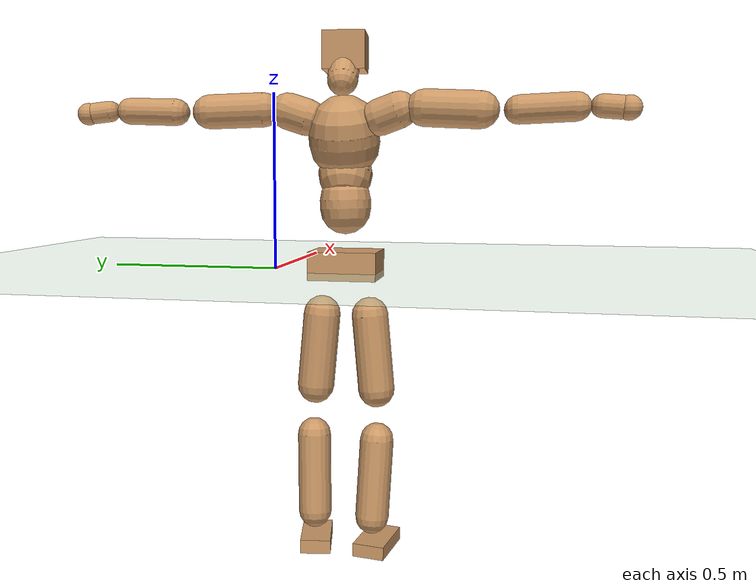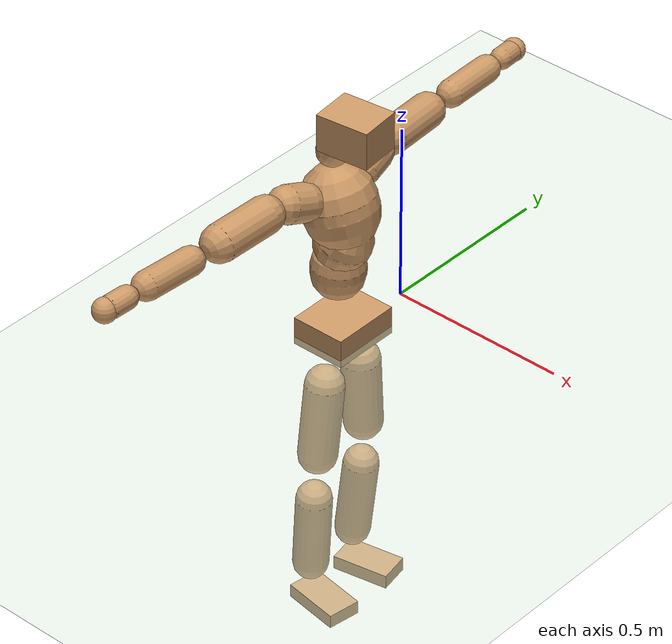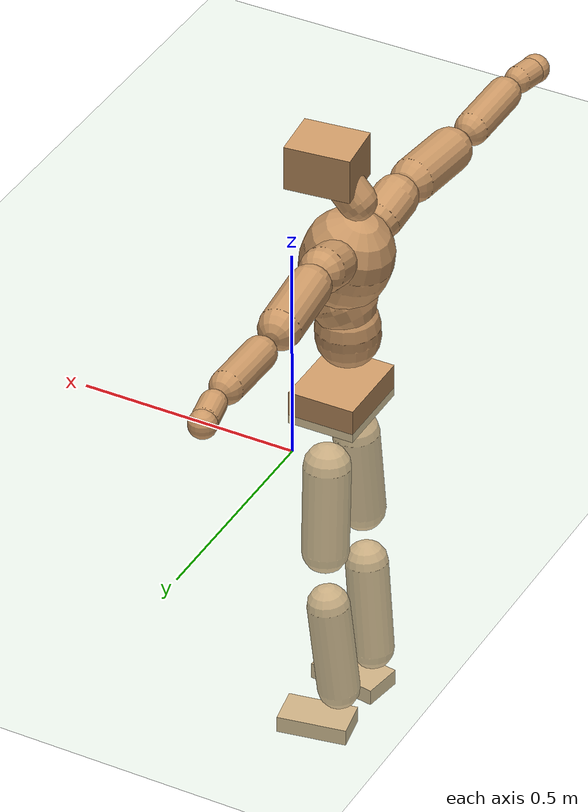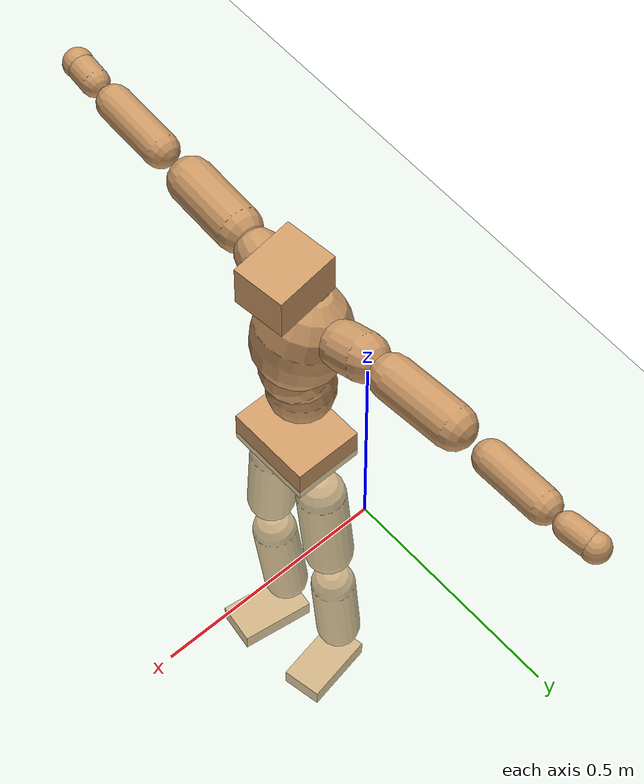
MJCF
<mujoco model="humanoid">
  <compiler coordinate="local" angle="radian"/>
  <default>
    <joint damping="0.0" armature="0.01" stiffness="0.0" limited="true"/>
    <geom conaffinity="1" condim="3" contype="7" margin="0.001" rgba="0.8 0.6 .4 1"/>
  </default>
  <asset>
    <texture type="skybox" builtin="gradient" rgb1=".4 .5 .6" rgb2="0 0 0" width="100" height="100"/>
    <texture builtin="flat" height="1278" mark="cross" markrgb="1 1 1" name="texgeom" random="0.01" rgb1="0.8 0.6 0.4" rgb2="0.8 0.6 0.4" type="cube" width="127"/>
    <texture builtin="checker" height="100" name="texplane" rgb1="0 0 0" rgb2="0.8 0.8 0.8" type="2d" width="100"/>
    <material name="MatPlane" reflectance="0.5" shininess="1" specular="1" texrepeat="60 60" texture="texplane"/>
    <material name="geom" texture="texgeom" texuniform="true"/>
  </asset>
  <worldbody>
    <light cutoff="100" diffuse="1 1 1" dir="-0 0 -1.3" directional="true" exponent="1" pos="0 0 1.3" specular=".1 .1 .1"/>
    <geom conaffinity="1" condim="3" name="floor" pos="0 0 0" rgba="0.8 0.9 0.8 1" size="100 100 .2" type="plane" material="MatPlane"/>
    <body name="Pelvis" pos="-0.0006 -0.2112 0.0291">
      <freejoint name="Pelvis"/>
      <geom type="box" contype="1" conaffinity="1" density="500" pos="-0.0050 -0.0000 -0.0121" size="0.0768 0.0964 0.04" quat="1.0000 0.0000 0.0000 0.0031" name="Pelvis"/>
      <body name="L_Hip" pos="-0.0066 0.0645 -0.0858">
        <joint name="L_Hip_x" type="hinge" pos="0 0 0" axis="1 0 0" stiffness="800" damping="80" armature="0.02" range="-180.0000 180.0000"/>
        <joint name="L_Hip_y" type="hinge" pos="0 0 0" axis="0 1 0" stiffness="800" damping="80" armature="0.02" range="-180.0000 180.0000"/>
        <joint name="L_Hip_z" type="hinge" pos="0 0 0" axis="0 0 1" stiffness="800" damping="80" armature="0.02" range="-180.0000 180.0000"/>
        <geom type="capsule" contype="1" conaffinity="1" density="500" fromto="-0.0018 0.0058 -0.0701 -0.0074 0.0233 -0.2804" size="0.0527" name="L_Hip"/>
        <body name="L_Knee" pos="-0.0092 0.0291 -0.3505">
          <joint name="L_Knee_x" type="hinge" pos="0 0 0" axis="1 0 0" stiffness="800" damping="80" armature="0.02" range="-180.0000 180.0000"/>
          <joint name="L_Knee_y" type="hinge" pos="0 0 0" axis="0 1 0" stiffness="800" damping="80" armature="0.02" range="-180.0000 180.0000"/>
          <joint name="L_Knee_z" type="hinge" pos="0 0 0" axis="0 0 1" stiffness="800" damping="80" armature="0.02" range="-180.0000 180.0000"/>
          <geom type="capsule" contype="1" conaffinity="1" density="500" fromto="-0.0076 -0.0025 -0.0752 -0.0302 -0.0099 -0.3008" size="0.0476" name="L_Knee"/>
          <body name="L_Ankle" pos="-0.0378 -0.0124 -0.376">
            <joint name="L_Ankle_x" type="hinge" pos="0 0 0" axis="1 0 0" stiffness="800" damping="80" armature="0.02" range="-180.0000 180.0000"/>
            <joint name="L_Ankle_y" type="hinge" pos="0 0 0" axis="0 1 0" stiffness="800" damping="80" armature="0.02" range="-180.0000 180.0000"/>
            <joint name="L_Ankle_z" type="hinge" pos="0 0 0" axis="0 0 1" stiffness="800" damping="80" armature="0.02" range="-180.0000 180.0000"/>
            <geom type="box" contype="1" conaffinity="1" density="500" pos="0.0564 0.0103 -0.0273" size="0.0795 0.044 0.02" quat="0.9959 0.0000 0.0000 0.0903" name="L_Ankle"/>
            <body name="L_Toe" pos="0.1128 0.0206 -0.0547">
              <joint name="L_Toe_x" type="hinge" pos="0 0 0" axis="1 0 0" stiffness="500" damping="50" armature="0.02" range="-180.0000 180.0000"/>
              <joint name="L_Toe_y" type="hinge" pos="0 0 0" axis="0 1 0" stiffness="500" damping="50" armature="0.02" range="-180.0000 180.0000"/>
              <joint name="L_Toe_z" type="hinge" pos="0 0 0" axis="0 0 1" stiffness="500" damping="50" armature="0.02" range="-180.0000 180.0000"/>
              <geom type="box" contype="1" conaffinity="1" density="500" pos="0.0000 0.0000 0.0272" size="0.0009 0.0022 0.001" quat="0.9953 0.0000 0.0000 0.0971" name="L_Toe"/>
            </body>
          </body>
        </body>
      </body>
      <body name="R_Hip" pos="-0.0027 -0.0623 -0.0858">
        <joint name="R_Hip_x" type="hinge" pos="0 0 0" axis="1 0 0" stiffness="800" damping="80" armature="0.02" range="-180.0000 180.0000"/>
        <joint name="R_Hip_y" type="hinge" pos="0 0 0" axis="0 1 0" stiffness="800" damping="80" armature="0.02" range="-180.0000 180.0000"/>
        <joint name="R_Hip_z" type="hinge" pos="0 0 0" axis="0 0 1" stiffness="800" damping="80" armature="0.02" range="-180.0000 180.0000"/>
        <geom type="capsule" contype="1" conaffinity="1" density="500" fromto="-0.0021 -0.0070 -0.0713 -0.0084 -0.0279 -0.2854" size="0.0521" name="R_Hip"/>
        <body name="R_Knee" pos="-0.0105 -0.0348 -0.3567">
          <joint name="R_Knee_x" type="hinge" pos="0 0 0" axis="1 0 0" stiffness="800" damping="80" armature="0.02" range="-180.0000 180.0000"/>
          <joint name="R_Knee_y" type="hinge" pos="0 0 0" axis="0 1 0" stiffness="800" damping="80" armature="0.02" range="-180.0000 180.0000"/>
          <joint name="R_Knee_z" type="hinge" pos="0 0 0" axis="0 0 1" stiffness="800" damping="80" armature="0.02" range="-180.0000 180.0000"/>
          <geom type="capsule" contype="1" conaffinity="1" density="500" fromto="-0.0071 0.0031 -0.0754 -0.0286 0.0124 -0.3018" size="0.0481" name="R_Knee"/>
          <body name="R_Ankle" pos="-0.0357 0.0155 -0.3772">
            <joint name="R_Ankle_x" type="hinge" pos="0 0 0" axis="1 0 0" stiffness="800" damping="80" armature="0.02" range="-180.0000 180.0000"/>
            <joint name="R_Ankle_y" type="hinge" pos="0 0 0" axis="0 1 0" stiffness="800" damping="80" armature="0.02" range="-180.0000 180.0000"/>
            <joint name="R_Ankle_z" type="hinge" pos="0 0 0" axis="0 0 1" stiffness="800" damping="80" armature="0.02" range="-180.0000 180.0000"/>
            <geom type="box" contype="1" conaffinity="1" density="500" pos="0.0584 -0.0090 -0.0225" size="0.0818 0.0463 0.0194" quat="0.9971 0.0000 0.0000 -0.0761" name="R_Ankle"/>
            <body name="R_Toe" pos="0.1167 -0.0179 -0.0451">
              <joint name="R_Toe_x" type="hinge" pos="0 0 0" axis="1 0 0" stiffness="500" damping="50" armature="0.02" range="-180.0000 180.0000"/>
              <joint name="R_Toe_y" type="hinge" pos="0 0 0" axis="0 1 0" stiffness="500" damping="50" armature="0.02" range="-180.0000 180.0000"/>
              <joint name="R_Toe_z" type="hinge" pos="0 0 0" axis="0 0 1" stiffness="500" damping="50" armature="0.02" range="-180.0000 180.0000"/>
              <geom type="box" contype="1" conaffinity="1" density="500" pos="0.0000 0.0000 0.0247" size="0.0009 0.0023 0.0011" quat="0.9978 0.0000 0.0000 -0.0666" name="R_Toe"/>
            </body>
          </body>
        </body>
      </body>
      <body name="Torso" pos="-0.0207 -0.0024 0.0988">
        <joint name="Torso_x" type="hinge" pos="0 0 0" axis="1 0 0" stiffness="1000" damping="100" armature="0.02" range="-180.0000 180.0000"/>
        <joint name="Torso_y" type="hinge" pos="0 0 0" axis="0 1 0" stiffness="1000" damping="100" armature="0.02" range="-180.0000 180.0000"/>
        <joint name="Torso_z" type="hinge" pos="0 0 0" axis="0 0 1" stiffness="1000" damping="100" armature="0.02" range="-180.0000 180.0000"/>
        <geom type="capsule" contype="1" conaffinity="1" density="500" fromto="0.0014 0.0020 0.0721 0.0009 0.0013 0.0481" size="0.0718" name="Torso"/>
        <body name="Spine" pos="0.0023 0.0033 0.1202">
          <joint name="Spine_x" type="hinge" pos="0 0 0" axis="1 0 0" stiffness="1000" damping="100" armature="0.02" range="-180.0000 180.0000"/>
          <joint name="Spine_y" type="hinge" pos="0 0 0" axis="0 1 0" stiffness="1000" damping="100" armature="0.02" range="-180.0000 180.0000"/>
          <joint name="Spine_z" type="hinge" pos="0 0 0" axis="0 0 1" stiffness="1000" damping="100" armature="0.02" range="-180.0000 180.0000"/>
          <geom type="capsule" contype="1" conaffinity="1" density="500" fromto="0.0150 0.0017 0.0297 0.0100 0.0011 0.0198" size="0.0756" name="Spine"/>
          <body name="Chest" pos="0.0249 0.0028 0.0496">
            <joint name="Chest_x" type="hinge" pos="0 0 0" axis="1 0 0" stiffness="1000" damping="100" armature="0.02" range="-180.0000 180.0000"/>
            <joint name="Chest_y" type="hinge" pos="0 0 0" axis="0 1 0" stiffness="1000" damping="100" armature="0.02" range="-180.0000 180.0000"/>
            <joint name="Chest_z" type="hinge" pos="0 0 0" axis="0 0 1" stiffness="1000" damping="100" armature="0.02" range="-180.0000 180.0000"/>
            <geom type="capsule" contype="1" conaffinity="1" density="500" fromto="-0.0296 -0.0007 0.0919 -0.0198 -0.0005 0.0613" size="0.0995" name="Chest"/>
            <body name="Neck" pos="-0.0587 -0.0013 0.2161">
              <joint name="Neck_x" type="hinge" pos="0 0 0" axis="1 0 0" stiffness="500" damping="50" armature="0.02" range="-180.0000 180.0000"/>
              <joint name="Neck_y" type="hinge" pos="0 0 0" axis="0 1 0" stiffness="500" damping="50" armature="0.02" range="-180.0000 180.0000"/>
              <joint name="Neck_z" type="hinge" pos="0 0 0" axis="0 0 1" stiffness="500" damping="50" armature="0.02" range="-180.0000 180.0000"/>
              <geom type="capsule" contype="1" conaffinity="1" density="500" fromto="0.0103 0.0008 0.0124 0.0413 0.0032 0.0497" size="0.0424" name="Neck"/>
              <body name="Head" pos="0.0516 0.004 0.0622">
                <joint name="Head_x" type="hinge" pos="0 0 0" axis="1 0 0" stiffness="500" damping="50" armature="0.02" range="-180.0000 180.0000"/>
                <joint name="Head_y" type="hinge" pos="0 0 0" axis="0 1 0" stiffness="500" damping="50" armature="0.02" range="-180.0000 180.0000"/>
                <joint name="Head_z" type="hinge" pos="0 0 0" axis="0 0 1" stiffness="500" damping="50" armature="0.02" range="-180.0000 180.0000"/>
                <geom type="box" contype="1" conaffinity="1" density="500" pos="0.0268 0.0030 0.0321" size="0.0736 0.059 0.0516" quat="0.9984 0.0000 0.0000 0.0557" name="Head"/>
              </body>
            </body>
            <body name="L_Thorax" pos="-0.0427 0.0807 0.1233">
              <joint name="L_Thorax_x" type="hinge" pos="0 0 0" axis="1 0 0" stiffness="500" damping="50" armature="0.02" range="-180.0000 180.0000"/>
              <joint name="L_Thorax_y" type="hinge" pos="0 0 0" axis="0 1 0" stiffness="500" damping="50" armature="0.02" range="-180.0000 180.0000"/>
              <joint name="L_Thorax_z" type="hinge" pos="0 0 0" axis="0 0 1" stiffness="500" damping="50" armature="0.02" range="-180.0000 180.0000"/>
              <geom type="capsule" contype="1" conaffinity="1" density="500" fromto="-0.0015 0.0183 0.0060 -0.0060 0.0731 0.0239" size="0.0508" name="L_Thorax"/>
              <body name="L_Shoulder" pos="-0.0075 0.0914 0.0298">
                <joint name="L_Shoulder_x" type="hinge" pos="0 0 0" axis="1 0 0" stiffness="500" damping="50" armature="0.02" range="-720.0000 720.0000"/>
                <joint name="L_Shoulder_y" type="hinge" pos="0 0 0" axis="0 1 0" stiffness="500" damping="50" armature="0.02" range="-720.0000 720.0000"/>
                <joint name="L_Shoulder_z" type="hinge" pos="0 0 0" axis="0 0 1" stiffness="500" damping="50" armature="0.02" range="-720.0000 720.0000"/>
                <geom type="capsule" contype="1" conaffinity="1" density="500" fromto="-0.0048 0.0510 -0.0016 -0.0190 0.2039 -0.0063" size="0.0477" name="L_Shoulder"/>
                <body name="L_Elbow" pos="-0.0238 0.2549 -0.0079">
                  <joint name="L_Elbow_x" type="hinge" pos="0 0 0" axis="1 0 0" stiffness="500" damping="50" armature="0.02" range="-720.0000 720.0000"/>
                  <joint name="L_Elbow_y" type="hinge" pos="0 0 0" axis="0 1 0" stiffness="500" damping="50" armature="0.02" range="-720.0000 720.0000"/>
                  <joint name="L_Elbow_z" type="hinge" pos="0 0 0" axis="0 0 1" stiffness="500" damping="50" armature="0.02" range="-720.0000 720.0000"/>
                  <geom type="capsule" contype="1" conaffinity="1" density="500" fromto="-0.0003 0.0464 0.0016 -0.0011 0.1854 0.0065" size="0.0374" name="L_Elbow"/>
                  <body name="L_Wrist" pos="-0.0014 0.2318 0.0081">
                    <joint name="L_Wrist_x" type="hinge" pos="0 0 0" axis="1 0 0" stiffness="300" damping="30" armature="0.02" range="-180.0000 180.0000"/>
                    <joint name="L_Wrist_y" type="hinge" pos="0 0 0" axis="0 1 0" stiffness="300" damping="30" armature="0.02" range="-180.0000 180.0000"/>
                    <joint name="L_Wrist_z" type="hinge" pos="0 0 0" axis="0 0 1" stiffness="300" damping="30" armature="0.02" range="-180.0000 180.0000"/>
                    <geom type="capsule" contype="1" conaffinity="1" density="500" fromto="-0.0026 0.0156 -0.0018 -0.0102 0.0622 -0.0073" size="0.0295" name="L_Wrist"/>
                    <body name="L_Hand" pos="-0.0128 0.0778 -0.0092">
                      <joint name="L_Hand_x" type="hinge" pos="0 0 0" axis="1 0 0" stiffness="300" damping="30" armature="0.02" range="-180.0000 180.0000"/>
                      <joint name="L_Hand_y" type="hinge" pos="0 0 0" axis="0 1 0" stiffness="300" damping="30" armature="0.02" range="-180.0000 180.0000"/>
                      <joint name="L_Hand_z" type="hinge" pos="0 0 0" axis="0 0 1" stiffness="300" damping="30" armature="0.02" range="-180.0000 180.0000"/>
                      <geom type="sphere" contype="1" conaffinity="1" density="500" size="0.0313" pos="0.0000 0.0000 0.0000" name="L_Hand"/>
                    </body>
                  </body>
                </body>
              </body>
            </body>
            <body name="R_Thorax" pos="-0.0468 -0.083 0.1202">
              <joint name="R_Thorax_x" type="hinge" pos="0 0 0" axis="1 0 0" stiffness="500" damping="50" armature="0.02" range="-180.0000 180.0000"/>
              <joint name="R_Thorax_y" type="hinge" pos="0 0 0" axis="0 1 0" stiffness="500" damping="50" armature="0.02" range="-180.0000 180.0000"/>
              <joint name="R_Thorax_z" type="hinge" pos="0 0 0" axis="0 0 1" stiffness="500" damping="50" armature="0.02" range="-180.0000 180.0000"/>
              <geom type="capsule" contype="1" conaffinity="1" density="500" fromto="-0.0025 -0.0189 0.0066 -0.0099 -0.0757 0.0263" size="0.0502" name="R_Thorax"/>
              <body name="R_Shoulder" pos="-0.0124 -0.0946 0.0329">
                <joint name="R_Shoulder_x" type="hinge" pos="0 0 0" axis="1 0 0" stiffness="500" damping="50" armature="0.02" range="-720.0000 720.0000"/>
                <joint name="R_Shoulder_y" type="hinge" pos="0 0 0" axis="0 1 0" stiffness="500" damping="50" armature="0.02" range="-720.0000 720.0000"/>
                <joint name="R_Shoulder_z" type="hinge" pos="0 0 0" axis="0 0 1" stiffness="500" damping="50" armature="0.02" range="-720.0000 720.0000"/>
                <geom type="capsule" contype="1" conaffinity="1" density="500" fromto="-0.0032 -0.0499 -0.0027 -0.0129 -0.1995 -0.0108" size="0.0502" name="R_Shoulder"/>
                <body name="R_Elbow" pos="-0.0161 -0.2493 -0.0135">
                  <joint name="R_Elbow_x" type="hinge" pos="0 0 0" axis="1 0 0" stiffness="500" damping="50" armature="0.02" range="-720.0000 720.0000"/>
                  <joint name="R_Elbow_y" type="hinge" pos="0 0 0" axis="0 1 0" stiffness="500" damping="50" armature="0.02" range="-720.0000 720.0000"/>
                  <joint name="R_Elbow_z" type="hinge" pos="0 0 0" axis="0 0 1" stiffness="500" damping="50" armature="0.02" range="-720.0000 720.0000"/>
                  <geom type="capsule" contype="1" conaffinity="1" density="500" fromto="-0.0010 -0.0485 0.0018 -0.0041 -0.1941 0.0073" size="0.0382" name="R_Elbow"/>
                  <body name="R_Wrist" pos="-0.0051 -0.2426 0.0091">
                    <joint name="R_Wrist_x" type="hinge" pos="0 0 0" axis="1 0 0" stiffness="300" damping="30" armature="0.02" range="-180.0000 180.0000"/>
                    <joint name="R_Wrist_y" type="hinge" pos="0 0 0" axis="0 1 0" stiffness="300" damping="30" armature="0.02" range="-180.0000 180.0000"/>
                    <joint name="R_Wrist_z" type="hinge" pos="0 0 0" axis="0 0 1" stiffness="300" damping="30" armature="0.02" range="-180.0000 180.0000"/>
                    <geom type="capsule" contype="1" conaffinity="1" density="500" fromto="-0.0020 -0.0161 -0.0014 -0.0082 -0.0643 -0.0058" size="0.0308" name="R_Wrist"/>
                    <body name="R_Hand" pos="-0.0102 -0.0804 -0.0072">
                      <joint name="R_Hand_x" type="hinge" pos="0 0 0" axis="1 0 0" stiffness="300" damping="30" armature="0.02" range="-180.0000 180.0000"/>
                      <joint name="R_Hand_y" type="hinge" pos="0 0 0" axis="0 1 0" stiffness="300" damping="30" armature="0.02" range="-180.0000 180.0000"/>
                      <joint name="R_Hand_z" type="hinge" pos="0 0 0" axis="0 0 1" stiffness="300" damping="30" armature="0.02" range="-180.0000 180.0000"/>
                      <geom type="sphere" contype="1" conaffinity="1" density="500" size="0.0323" pos="0.0000 0.0000 0.0000" name="R_Hand"/>
                    </body>
                  </body>
                </body>
              </body>
            </body>
          </body>
        </body>
      </body>
    </body>
  </worldbody>
  <actuator>
    <motor name="L_Hip_x" joint="L_Hip_x" gear="500"/>
    <motor name="L_Hip_y" joint="L_Hip_y" gear="500"/>
    <motor name="L_Hip_z" joint="L_Hip_z" gear="500"/>
    <motor name="L_Knee_x" joint="L_Knee_x" gear="500"/>
    <motor name="L_Knee_y" joint="L_Knee_y" gear="500"/>
    <motor name="L_Knee_z" joint="L_Knee_z" gear="500"/>
    <motor name="L_Ankle_x" joint="L_Ankle_x" gear="500"/>
    <motor name="L_Ankle_y" joint="L_Ankle_y" gear="500"/>
    <motor name="L_Ankle_z" joint="L_Ankle_z" gear="500"/>
    <motor name="L_Toe_x" joint="L_Toe_x" gear="500"/>
    <motor name="L_Toe_y" joint="L_Toe_y" gear="500"/>
    <motor name="L_Toe_z" joint="L_Toe_z" gear="500"/>
    <motor name="R_Hip_x" joint="R_Hip_x" gear="500"/>
    <motor name="R_Hip_y" joint="R_Hip_y" gear="500"/>
    <motor name="R_Hip_z" joint="R_Hip_z" gear="500"/>
    <motor name="R_Knee_x" joint="R_Knee_x" gear="500"/>
    <motor name="R_Knee_y" joint="R_Knee_y" gear="500"/>
    <motor name="R_Knee_z" joint="R_Knee_z" gear="500"/>
    <motor name="R_Ankle_x" joint="R_Ankle_x" gear="500"/>
    <motor name="R_Ankle_y" joint="R_Ankle_y" gear="500"/>
    <motor name="R_Ankle_z" joint="R_Ankle_z" gear="500"/>
    <motor name="R_Toe_x" joint="R_Toe_x" gear="500"/>
    <motor name="R_Toe_y" joint="R_Toe_y" gear="500"/>
    <motor name="R_Toe_z" joint="R_Toe_z" gear="500"/>
    <motor name="Torso_x" joint="Torso_x" gear="500"/>
    <motor name="Torso_y" joint="Torso_y" gear="500"/>
    <motor name="Torso_z" joint="Torso_z" gear="500"/>
    <motor name="Spine_x" joint="Spine_x" gear="500"/>
    <motor name="Spine_y" joint="Spine_y" gear="500"/>
    <motor name="Spine_z" joint="Spine_z" gear="500"/>
    <motor name="Chest_x" joint="Chest_x" gear="500"/>
    <motor name="Chest_y" joint="Chest_y" gear="500"/>
    <motor name="Chest_z" joint="Chest_z" gear="500"/>
    <motor name="Neck_x" joint="Neck_x" gear="500"/>
    <motor name="Neck_y" joint="Neck_y" gear="500"/>
    <motor name="Neck_z" joint="Neck_z" gear="500"/>
    <motor name="Head_x" joint="Head_x" gear="500"/>
    <motor name="Head_y" joint="Head_y" gear="500"/>
    <motor name="Head_z" joint="Head_z" gear="500"/>
    <motor name="L_Thorax_x" joint="L_Thorax_x" gear="500"/>
    <motor name="L_Thorax_y" joint="L_Thorax_y" gear="500"/>
    <motor name="L_Thorax_z" joint="L_Thorax_z" gear="500"/>
    <motor name="L_Shoulder_x" joint="L_Shoulder_x" gear="500"/>
    <motor name="L_Shoulder_y" joint="L_Shoulder_y" gear="500"/>
    <motor name="L_Shoulder_z" joint="L_Shoulder_z" gear="500"/>
    <motor name="L_Elbow_x" joint="L_Elbow_x" gear="500"/>
    <motor name="L_Elbow_y" joint="L_Elbow_y" gear="500"/>
    <motor name="L_Elbow_z" joint="L_Elbow_z" gear="500"/>
    <motor name="L_Wrist_x" joint="L_Wrist_x" gear="500"/>
    <motor name="L_Wrist_y" joint="L_Wrist_y" gear="500"/>
    <motor name="L_Wrist_z" joint="L_Wrist_z" gear="500"/>
    <motor name="L_Hand_x" joint="L_Hand_x" gear="500"/>
    <motor name="L_Hand_y" joint="L_Hand_y" gear="500"/>
    <motor name="L_Hand_z" joint="L_Hand_z" gear="500"/>
    <motor name="R_Thorax_x" joint="R_Thorax_x" gear="500"/>
    <motor name="R_Thorax_y" joint="R_Thorax_y" gear="500"/>
    <motor name="R_Thorax_z" joint="R_Thorax_z" gear="500"/>
    <motor name="R_Shoulder_x" joint="R_Shoulder_x" gear="500"/>
    <motor name="R_Shoulder_y" joint="R_Shoulder_y" gear="500"/>
    <motor name="R_Shoulder_z" joint="R_Shoulder_z" gear="500"/>
    <motor name="R_Elbow_x" joint="R_Elbow_x" gear="500"/>
    <motor name="R_Elbow_y" joint="R_Elbow_y" gear="500"/>
    <motor name="R_Elbow_z" joint="R_Elbow_z" gear="500"/>
    <motor name="R_Wrist_x" joint="R_Wrist_x" gear="500"/>
    <motor name="R_Wrist_y" joint="R_Wrist_y" gear="500"/>
    <motor name="R_Wrist_z" joint="R_Wrist_z" gear="500"/>
    <motor name="R_Hand_x" joint="R_Hand_x" gear="500"/>
    <motor name="R_Hand_y" joint="R_Hand_y" gear="500"/>
    <motor name="R_Hand_z" joint="R_Hand_z" gear="500"/>
  </actuator>
  <contact>
    <exclude body1="Torso" body2="Chest"/>
    <exclude body1="Head" body2="Chest"/>
    <exclude body1="R_Knee" body2="R_Toe"/>
    <exclude body1="R_Knee" body2="L_Ankle"/>
    <exclude body1="R_Knee" body2="L_Toe"/>
    <exclude body1="L_Knee" body2="L_Toe"/>
    <exclude body1="L_Knee" body2="R_Ankle"/>
    <exclude body1="L_Knee" body2="R_Toe"/>
    <exclude body1="L_Shoulder" body2="Chest"/>
    <exclude body1="R_Shoulder" body2="Chest"/>
  </contact>
  <sensor/>
  <size njmax="700" nconmax="700"/>
</mujoco>
